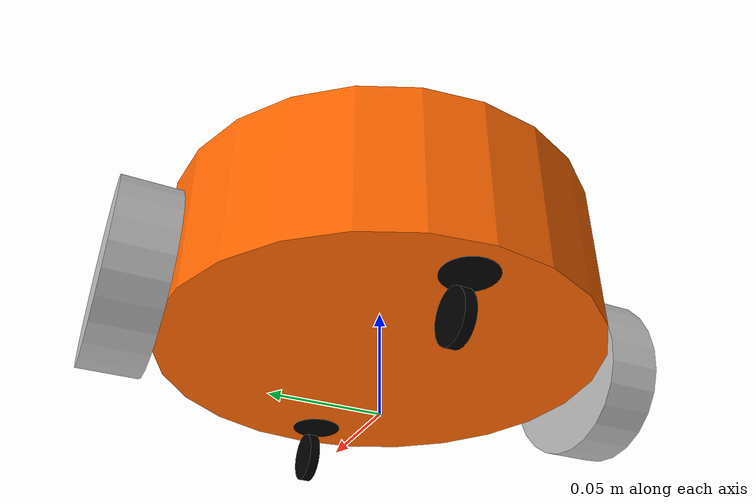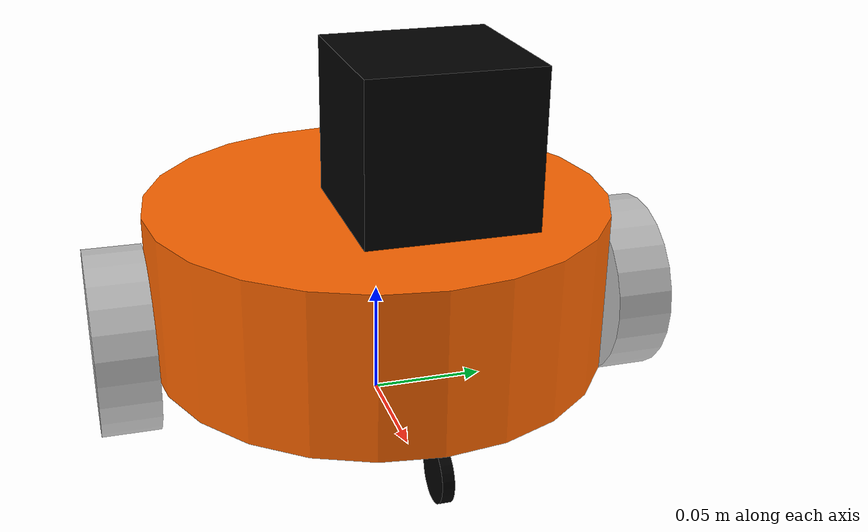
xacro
<?xml version="1.0"?>
<robot name="myrobot_diff_bot_3d_lidar" xmlns:xacro="http://www.ros.org/wiki/xacro">

    <xacro:include filename="$(find myrobot_sim_gazebo)/xacro/myrobot_base_no_odom.xacro" />
    <xacro:include filename="$(find myrobot_sim_gazebo)/xacro/sensor/imu_gazebo.xacro" />
    <xacro:include filename="$(find myrobot_sim_gazebo)/xacro/sensor/lidar_3d_gazebo.xacro" />
    <xacro:include filename="$(find myrobot_sim_gazebo)/xacro/sensor/camera_gazebo.xacro" />

    <xacro:property name="rgbd_offset_x" value="${base_radius+0.02}" />
    <xacro:property name="rgbd_offset_y" value="0" />
    <xacro:property name="rgbd_offset_z" value="0.02" />

    <xacro:property name="lidar3d_offset_x" value="0.07" />
    <xacro:property name="lidar3d_offset_y" value="0" />
    <xacro:property name="lidar3d_offset_z" value="${base_height/2+0.05}" />

    <xacro:base_gazebo/>

    <joint name="lidar3d_joint" type="fixed">
        <origin xyz="${lidar3d_offset_x} ${lidar3d_offset_y} ${lidar3d_offset_z}" rpy="0 0 0" />
        <parent link="base_link"/>
        <child link="lidar3d_link"/>
    </joint>

    <!-- MID-360 approximation for Gazebo's uniform gpu_ray scanner:
         500 * 40 * 10 Hz = 200,000 points/s. -->
    <xacro:lidar_3d
        prefix="lidar3d"
        topic="points"
        samples="500"
        vertical_samples="40"
        min_angle="-3.14159"
        max_angle="3.14159"
        min_vertical_angle="-0.122173"
        max_vertical_angle="0.907571"
        min_range="0.10"
        max_range="40.0"
        update_rate="10"
        visualize="false"/>

    <joint name="imu_joint" type="fixed">
        <origin xyz="0 0 0" rpy="0 0 0" />
        <parent link="base_link"/>
        <child link="imu_link"/>
    </joint>

    <xacro:imu_xacro prefix="imu"/>

</robot>

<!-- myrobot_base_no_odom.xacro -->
<robot name="myrobot_base" xmlns:xacro="http://www.ros.org/wiki/xacro">

    <!-- PROPERTY LIST -->
    <xacro:property name="M_PI" value="3.1415926"/>

    <!-- base_link的质量、半径、高度 -->
    <xacro:property name="base_mass"   value="1" />
    <xacro:property name="base_radius"  value="0.1"/>
    <xacro:property name="base_height" value="0.07"/>

    <!-- 万向轮半径、轮子宽度、x轴偏移 -->
    <xacro:property name="caster_mass"    value="0.2" />
    <xacro:property name="caster_radius"  value="0.012"/>
    <xacro:property name="caster_length"    value="0.005" />
    <xacro:property name="caster_joint_x" value="${base_radius-0.02}"/>

    <!-- 运动轮质量、半径、宽度、x轴偏移、z相对于base_link的偏移 -->
    <xacro:property name="wheel_mass"   value="0.2" />
    <xacro:property name="wheel_radius" value="0.04"/>
    <xacro:property name="wheel_length" value="0.025"/>
    <xacro:property name="wheel_joint_x" value="0.0"/>
    <xacro:property name="wheel_joint_z" value="${caster_radius*2+base_height/2-wheel_radius}"/>

    <!-- Defining the colors used in this robot -->
    <material name="yellow">
        <color rgba="1 0.4 0 1"/>
    </material>
    <material name="black">
        <color rgba="0 0 0 0.95"/>
    </material>
    <material name="gray">
        <color rgba="0.75 0.75 0.75 1"/>
    </material>

    <!-- Macro for inertia matrix -->
    <xacro:macro name="sphere_inertial_matrix" params="m r">
        <inertial>
            <mass value="${m}" />
            <inertia ixx="${2*m*r*r/5}" ixy="0" ixz="0"
                iyy="${2*m*r*r/5}" iyz="0"
                izz="${2*m*r*r/5}" />
        </inertial>
    </xacro:macro>

    <xacro:macro name="cylinder_inertial_matrix" params="m r h">
        <inertial>
            <mass value="${m}" />
            <inertia ixx="${m*(3*r*r+h*h)/12}" ixy = "0" ixz = "0"
                iyy="${m*(3*r*r+h*h)/12}" iyz = "0"
                izz="${m*r*r/2}" />
        </inertial>
    </xacro:macro>

    <xacro:macro name="box_inertial_matrix" params="m l w h">
        <inertial>
             <mass value="${m}" />
             <inertia ixx="${m*(h*h + l*l)/12}" ixy = "0" ixz = "0"
                 iyy="${m*(w*w + l*l)/12}" iyz= "0"
                 izz="${m*(w*w + h*h)/12}" />
        </inertial>
    </xacro:macro>

    <!-- 运动轮的宏 -->
    <xacro:macro name="wheel" params="prefix reflect">
        <joint name="${prefix}_wheel_joint" type="continuous">
            <origin xyz="${wheel_joint_x} ${reflect*(base_radius+wheel_length/2)} ${-wheel_joint_z}" rpy="0 0 0"/>
            <parent link="base_link"/>
            <child link="${prefix}_wheel_link"/>
            <axis xyz="0 1 0"/>
        </joint>

        <link name="${prefix}_wheel_link">
            <visual>
                <origin xyz="0 0 0" rpy="${M_PI/2} 0 0" />
                <geometry>
                    <cylinder radius="${wheel_radius}" length = "${wheel_length}"/>
                </geometry>
                <material name="gray" />
            </visual>
            <collision>
                <origin xyz="0 0 0" rpy="${M_PI/2} 0 0" />
                <geometry>
                    <cylinder radius="${wheel_radius}" length = "${wheel_length}"/>
                </geometry>
            </collision>
            <xacro:cylinder_inertial_matrix  m="${wheel_mass}" r="${wheel_radius}" h="${wheel_length}" />
        </link>

        <gazebo reference="${prefix}_wheel_link">
            <material>Gazebo/Gray</material>
            <mu1>100000.0</mu1>
            <mu2>100000.0</mu2>
        </gazebo>

        <!-- Transmission is important to link the joints and the controller -->
        <transmission name="${prefix}_wheel_joint_trans">
            <type>transmission_interface/SimpleTransmission</type>
            <joint name="${prefix}_wheel_joint" >
                <hardwareInterface>hardware_interface/VelocityJointInterface</hardwareInterface>
            </joint>
            <actuator name="${prefix}_wheel_joint_motor">
                <hardwareInterface>hardware_interface/VelocityJointInterface</hardwareInterface>
                <mechanicalReduction>1</mechanicalReduction>
            </actuator>
        </transmission>
    </xacro:macro>

    <!-- 万向轮定义 -->
    <xacro:macro name="caster" params="prefix reflect">

        <joint name="${prefix}_top_caster_joint" type="continuous">
            <origin xyz="${reflect*caster_joint_x} 0 ${-(base_height/2)}" rpy="0 0 0"/>
            <parent link="base_link"/>
            <child link="${prefix}_top_link"/>
            <axis xyz="0 0 1"/>
        </joint>

        <link name="${prefix}_top_link">
            <visual>
                <origin xyz="0 0 0" rpy="0 0 0"/>
                <geometry>
                    <cylinder radius="${caster_radius}" length = "${caster_length/20}" />
                </geometry>
                <material name="black" />
            </visual>
            <collision>
                <origin xyz="0 0 0" rpy="0 0 0"/>
                <geometry>
                    <cylinder radius="${caster_radius}" length = "${caster_length/20}" />
                </geometry>
            </collision>
            <xacro:cylinder_inertial_matrix  m="${caster_mass/20}" r="${caster_radius}" h="${caster_length/20}" />
        </link>

        <joint name="${prefix}_caster_joint" type="continuous">
            <origin xyz="${caster_radius} 0 ${ -caster_radius}" rpy="0 0 0"/>
            <parent link="${prefix}_top_link"/>
            <child link="${prefix}_caster_link"/>
            <axis xyz="0 1 0"/>
        </joint>
        <link name="${prefix}_caster_link">
            <visual>
                <origin xyz="0 0 0" rpy="${M_PI/2} 0 0"/>
                <geometry>
                    <cylinder radius="${caster_radius}" length = "${caster_length}" />
                </geometry>
                <material name="black" />
            </visual>
            <collision>
                <origin xyz="0 0 0" rpy="${M_PI/2} 0 0"/>
                <geometry>
                    <cylinder radius="${caster_radius}" length = "${caster_length}" />
                </geometry>
            </collision>
            <xacro:cylinder_inertial_matrix  m="${caster_mass}" r="${caster_radius}" h="${caster_length}" />
        </link>

        <gazebo reference="${prefix}_caster_link">
            <material>Gazebo/Black</material>
        </gazebo>
    </xacro:macro>

    <xacro:macro name="base_gazebo">

        <link name="base_footprint"/>

        <joint name="base_footprint_joint" type="fixed">
            <origin xyz="0 0 ${base_height/2 + caster_radius*2}" rpy="0 0 0" />
            <parent link="base_footprint"/>
            <child link="base_link" />
        </joint>

        <link name="base_link">
            <visual>
                <origin xyz=" 0 0 0" rpy="0 0 0" />
                <geometry>

                    <cylinder radius="${base_radius}" length = "${base_height}"/>
                </geometry>
                <material name="yellow" />
            </visual>
            <collision>
                <origin xyz=" 0 0 0" rpy="0 0 0" />
                <geometry>
                    <cylinder radius="${base_radius}" length = "${base_height}"/>
                </geometry>
            </collision>
            <xacro:cylinder_inertial_matrix  m="${base_mass}" r="${base_radius}" h="${base_height}" />
        </link>

        <gazebo reference="base_link">
            <material>Gazebo/Yellow</material>
        </gazebo>

        <xacro:wheel prefix="left"  reflect="1"/>
        <xacro:wheel prefix="right" reflect="-1"/>

        <xacro:caster prefix="back"  reflect="-1"/>

        <xacro:caster prefix="front"  reflect="1"/>

        <!-- controller -->
        <gazebo>
            <plugin name="differential_drive_controller"
                    filename="libgazebo_ros_diff_drive.so">
                  <update_rate>30</update_rate>
                  <left_joint>left_wheel_joint</left_joint>
                  <right_joint>right_wheel_joint</right_joint>
                  <wheel_separation>${base_radius*2+wheel_length}</wheel_separation>
                  <wheel_diameter>${2*wheel_radius}</wheel_diameter>
                  <max_wheel_torque>10</max_wheel_torque>
                  <max_wheel_acceleration>1.0</max_wheel_acceleration>
                  <command_topic>cmd_vel</command_topic>
                  <publish_odom>false</publish_odom>
                  <publish_odom_tf>false</publish_odom_tf>
                  <publish_wheel_tf>false</publish_wheel_tf>
                  <odometry_topic>odom</odometry_topic>
                  <odometry_frame>odom</odometry_frame>
                  <robot_base_frame>base_footprint</robot_base_frame>
                  <odometry_source>1</odometry_source>
            </plugin>
        </gazebo>
    </xacro:macro>

</robot>

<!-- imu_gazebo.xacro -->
<robot xmlns:xacro="http://www.ros.org/wiki/xacro" name="imu">

    <xacro:macro name="imu_xacro" params="prefix:=imu">
        <!-- Create imu reference frame -->
        <link name="${prefix}_link">
            <inertial>
                <mass value="0.1" />
                <origin xyz="0 0 0" />
                <inertia ixx="0.01" ixy="0.0" ixz="0.0"
                         iyy="0.01" iyz="0.0"
                         izz="0.01" />
            </inertial>

            <visual>
                <origin xyz=" 0 0 0 " rpy="0 0 0" />
                <geometry>
                    <box size="0.03 0.03 0.03" />
                </geometry>
                <material name="black"/>
            </visual>

            <collision>
                <origin xyz="0.0 0.0 0.0" rpy="0 0 0" />
                <geometry>
                    <box size="0.03 0.03 0.03" />
                </geometry>
            </collision>
        </link>
        <gazebo reference="${prefix}_link">
            <material>Gazebo/Red</material>
        </gazebo>

        <gazebo reference="${prefix}_link">
            <gravity>true</gravity>
            <sensor name="${prefix}" type="imu">
                <always_on>true</always_on>
                <update_rate>200</update_rate>
                <visualize>true</visualize>
                <imu>
                    <angular_velocity>
                    <x>
                        <noise type="gaussian">
                        <mean>0.0</mean>
                        <stddev>2e-4</stddev>
                        <bias_mean>0.0000075</bias_mean>
                        <bias_stddev>0.0000008</bias_stddev>
                        </noise>
                    </x>
                    <y>
                        <noise type="gaussian">
                        <mean>0.0</mean>
                        <stddev>2e-4</stddev>
                        <bias_mean>0.0000075</bias_mean>
                        <bias_stddev>0.0000008</bias_stddev>
                        </noise>
                    </y>
                    <z>
                        <noise type="gaussian">
                        <mean>0.0</mean>
                        <stddev>2e-4</stddev>
                        <bias_mean>0.0000075</bias_mean>
                        <bias_stddev>0.0000008</bias_stddev>
                        </noise>
                    </z>
                    </angular_velocity>
                    <linear_acceleration>
                    <x>
                        <noise type="gaussian">
                        <mean>0.0</mean>
                        <stddev>1.7e-2</stddev>
                        <bias_mean>0.1</bias_mean>
                        <bias_stddev>0.001</bias_stddev>
                        </noise>
                    </x>
                    <y>
                        <noise type="gaussian">
                        <mean>0.0</mean>
                        <stddev>1.7e-2</stddev>
                        <bias_mean>0.1</bias_mean>
                        <bias_stddev>0.001</bias_stddev>
                        </noise>
                    </y>
                    <z>
                        <noise type="gaussian">
                        <mean>0.0</mean>
                        <stddev>1.7e-2</stddev>
                        <bias_mean>0.1</bias_mean>
                        <bias_stddev>0.001</bias_stddev>
                        </noise>
                    </z>
                    </linear_acceleration>
                </imu>
                <plugin filename="libgazebo_ros_imu_sensor.so" name="imu_plugin">
                    <ros>
                        <remapping>~/out:=${prefix}/data_raw</remapping>
                    </ros>
                    <frame_name>${prefix}_link</frame_name>
                    <initialOrientationAsReference>false</initialOrientationAsReference>
                </plugin>
                <pose>0 0 0 0 0 0</pose>
            </sensor>
        </gazebo>

    </xacro:macro>
</robot>

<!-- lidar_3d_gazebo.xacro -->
<robot xmlns:xacro="http://www.ros.org/wiki/xacro" name="lidar_3d">

    <xacro:macro name="lidar_3d" params="prefix:=lidar3d topic:=points samples:=720 vertical_samples:=16 min_angle:=-3.14159 max_angle:=3.14159 min_vertical_angle:=-0.261799 max_vertical_angle:=0.261799 min_range:=0.10 max_range:=30.0 update_rate:=10 visualize:=false">
        <link name="${prefix}_link">
            <inertial>
                <!-- Livox MID-360: 65 x 65 x 60 mm, 265 g. -->
                <mass value="0.265" />
                <origin xyz="0 0 0" />
                <inertia ixx="0.000172802" ixy="0.0" ixz="0.0"
                         iyy="0.000172802" iyz="0.0"
                         izz="0.000186604" />
            </inertial>

            <visual>
                <origin xyz="0 0 0" rpy="0 0 0" />
                <geometry>
                    <box size="0.065 0.065 0.060"/>
                </geometry>
                <material name="black"/>
            </visual>

            <collision>
                <origin xyz="0 0 0" rpy="0 0 0" />
                <geometry>
                    <box size="0.065 0.065 0.060"/>
                </geometry>
            </collision>
        </link>

        <gazebo reference="${prefix}_link">
            <material>Gazebo/Black</material>
        </gazebo>

        <gazebo reference="${prefix}_link">
            <sensor type="gpu_ray" name="${prefix}_sensor">
                <update_rate>${update_rate}</update_rate>
                <visualize>${visualize}</visualize>
                <ray>
                    <scan>
                        <horizontal>
                            <samples>${samples}</samples>
                            <resolution>1</resolution>
                            <min_angle>${min_angle}</min_angle>
                            <max_angle>${max_angle}</max_angle>
                        </horizontal>
                        <vertical>
                            <samples>${vertical_samples}</samples>
                            <resolution>1</resolution>
                            <min_angle>${min_vertical_angle}</min_angle>
                            <max_angle>${max_vertical_angle}</max_angle>
                        </vertical>
                    </scan>
                    <range>
                        <min>${min_range}</min>
                        <max>${max_range}</max>
                        <resolution>0.01</resolution>
                    </range>
                    <noise>
                        <type>gaussian</type>
                        <mean>0.0</mean>
                        <stddev>0.01</stddev>
                    </noise>
                </ray>
                <plugin name="${prefix}_plugin" filename="libgazebo_ros_ray_sensor.so">
                    <ros>
                        <namespace>/</namespace>
                        <remapping>~/out:=${topic}</remapping>
                    </ros>
                    <output_type>sensor_msgs/PointCloud2</output_type>
                    <frame_name>${prefix}_link</frame_name>
                </plugin>
            </sensor>
        </gazebo>

    </xacro:macro>
</robot>
